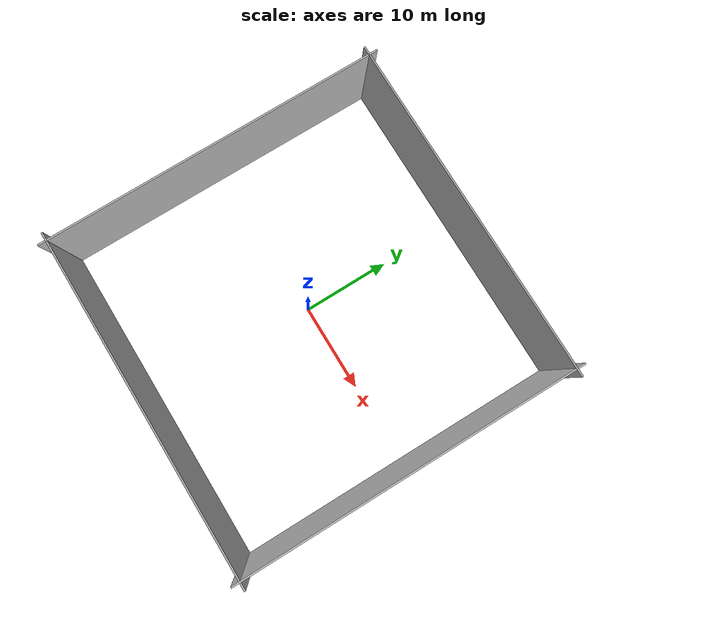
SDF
<sdf version="1.6">
 <world name="default">
  <include><uri>model://sun</uri></include>
  <scene><shadows>0</shadows><ambient>0.4 0.4 0.4 1</ambient><background>0.7 0.7 0.7 1</background></scene>
  <plugin name="ros_interface_plugin" filename="librotors_gazebo_ros_interface_plugin.so"/>
  <physics name="default_physics" default="0" type="ode">
   <max_step_size>0.005</max_step_size>
   <real_time_factor>10</real_time_factor>
   <real_time_update_rate>600</real_time_update_rate>
   <ode>
    <solver>
     <type>quick</type>
     <iters>1000</iters>
     <sor>1.3</sor>
     <use_dynamic_moi_rescaling>0</use_dynamic_moi_rescaling>
    </solver>
    <constraints>
     <cfm>0</cfm>
     <erp>0.2</erp>
     <contact_max_correcting_vel>100</contact_max_correcting_vel>
     <contact_surface_layer>0.001</contact_surface_layer>
    </constraints>
   </ode>
  </physics>
  <gravity>0 0 -9.8</gravity>
  <magnetic_field>6e-06 2.3e-05 -4.2e-05</magnetic_field>
  <atmosphere type="adiabatic"/>
  <audio><device>default</device></audio>
  <spherical_coordinates>
   <surface_model>EARTH_WGS84</surface_model>
   <latitude_deg>0</latitude_deg>
   <longitude_deg>0</longitude_deg>
   <elevation>0</elevation>
   <heading_deg>0</heading_deg>
  </spherical_coordinates>
  <model name="grey_wall_boundary_0">
   <static>1</static>
   <link name="link">
    <pose>-15 0 0 0 0 1.57</pose>
    <collision name="collision"><geometry><box><size>42 0.2 10</size></box></geometry></collision>
    <visual name="visual">
     <cast_shadows>0</cast_shadows>
     <geometry><box><size>42 0.2 10</size></box></geometry>
    </visual>
   </link>
   <pose>-5 0 0 0 0 0</pose>
  </model>
  <model name="grey_wall_boundary_1">
   <static>1</static>
   <link name="link">
    <pose>7.0 15 0 0 0 0</pose>
    <collision name="collision"><geometry><box><size>42 0.2 10</size></box></geometry></collision>
    <visual name="visual">
     <cast_shadows>0</cast_shadows>
     <geometry><box><size>42 0.2 10</size></box></geometry>
    </visual>
   </link>
   <pose>-7.0 5 0 0 0 0</pose>
  </model>
  <model name="grey_wall_boundary_2">
   <static>1</static>
   <link name="link">
    <pose>15 0 0 0 0 1.57</pose>
    <collision name="collision"><geometry><box><size>42 0.2 10</size></box></geometry></collision>
    <visual name="visual">
     <cast_shadows>0</cast_shadows>
     <geometry><box><size>42 0.2 10</size></box></geometry>
    </visual>
   </link>
   <pose>5 0 0 0 0 0</pose>
  </model>
  <model name="grey_wall_boundary_3">
   <static>1</static>
   <link name="link">
    <pose>7.0 -15 0 0 0 0</pose>
    <collision name="collision"><geometry><box><size>42 0.2 10</size></box></geometry></collision>
    <visual name="visual">
     <cast_shadows>0</cast_shadows>
     <geometry><box><size>42 0.2 10</size></box></geometry>
    </visual>
   </link>
   <pose>-7.0 -5 0 0 0 0</pose>
  </model>
 </world>
</sdf>
